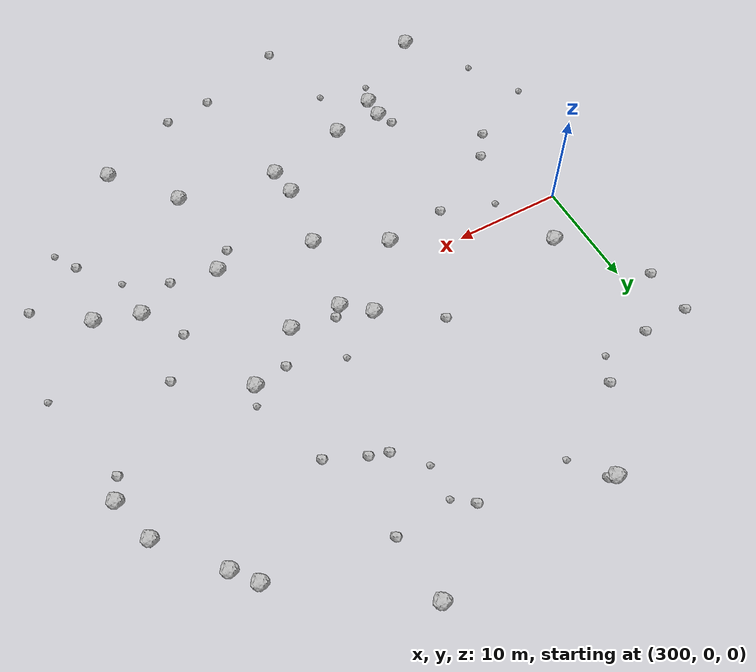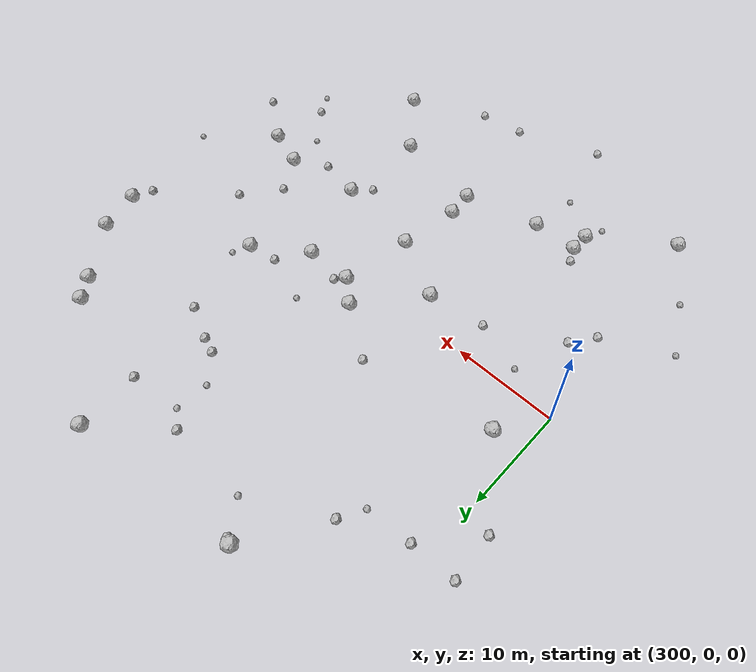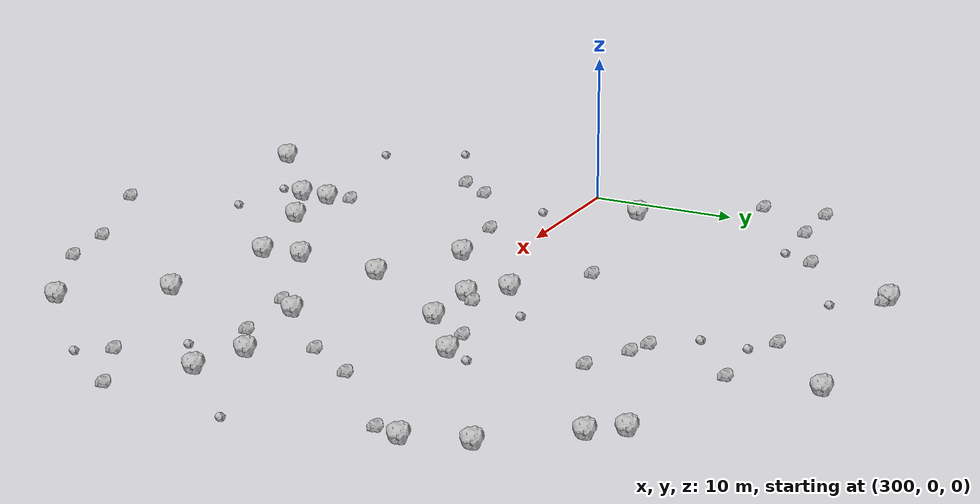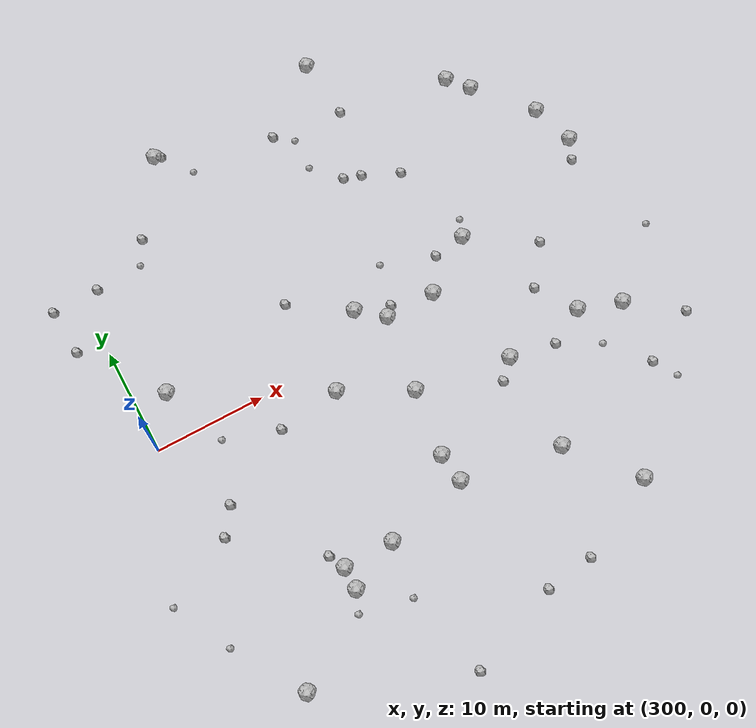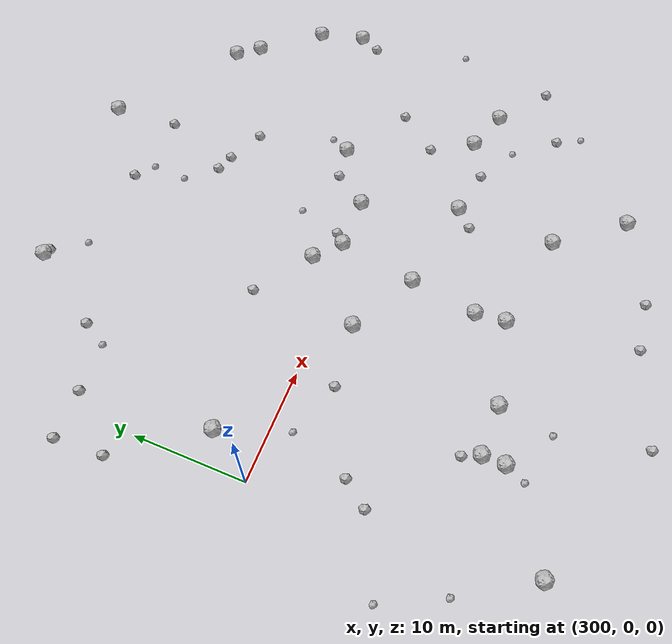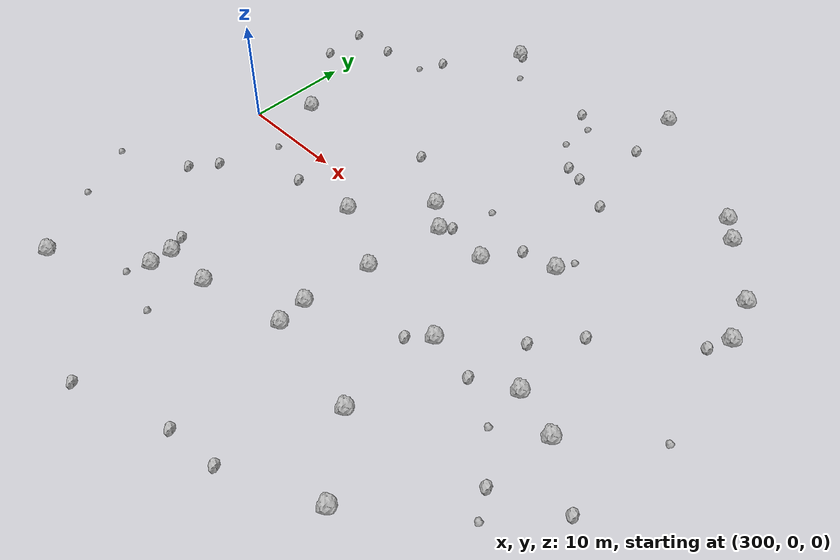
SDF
<sdf version="1.6">
 <world name="default">
  <include><uri>model://sun</uri></include>
  <model name="rock1_8_3">
   <include><uri>model://rock1</uri><pose>327.86338473538683 1.2996019143087452 0.5 0 0 0</pose></include>
  </model>
  <model name="rock1_8_4">
   <include><uri>model://rock1</uri><pose>313.7614206147493 -16.53851986024071 0.5 0 0 0</pose></include>
  </model>
  <model name="rock1_8_5">
   <include><uri>model://rock1</uri><pose>338.3586077307131 -6.24210390244739 0.5 0 0 0</pose></include>
  </model>
  <model name="rock1_8_6">
   <include><uri>model://rock1</uri><pose>346.81440949912894 8.727120104534876 0.5 0 0 0</pose></include>
  </model>
  <model name="rock1_8_7">
   <include><uri>model://rock1</uri><pose>315.9246219629441 -2.68444812201637 0.5 0 0 0</pose></include>
  </model>
  <model name="rock1_8_8">
   <include><uri>model://rock1</uri><pose>301.8760731844232 -23.877693937973252 0.5 0 0 0</pose></include>
  </model>
  <model name="rock1_8_9">
   <include><uri>model://rock1</uri><pose>339.9292981585214 19.88422234131491 0.5 0 0 0</pose></include>
  </model>
  <model name="rock1_8_10">
   <include><uri>model://rock1</uri><pose>342.2628519516746 -7.5683044145192255 0.5 0 0 0</pose></include>
  </model>
  <model name="rock1_8_11">
   <include><uri>model://rock1</uri><pose>335.1133981208722 -22.063502058854912 0.5 0 0 0</pose></include>
  </model>
  <model name="rock1_8_12">
   <include><uri>model://rock1</uri><pose>321.9853731376645 -5.918734283574839 0.5 0 0 0</pose></include>
  </model>
  <model name="rock1_8_13">
   <include><uri>model://rock1</uri><pose>309.2528317218501 -16.5360134112418 0.5 0 0 0</pose></include>
  </model>
  <model name="rock1_8_14">
   <include><uri>model://rock1</uri><pose>341.4874788692258 17.925904587949397 0.5 0 0 0</pose></include>
  </model>
  <model name="rock1_8_15">
   <include><uri>model://rock1</uri><pose>332.945924548327 4.822953734690557 0.5 0 0 0</pose></include>
  </model>
  <model name="rock1_8_16">
   <include><uri>model://rock1</uri><pose>320.8867504674974 3.199229775727467 0.5 0 0 0</pose></include>
  </model>
  <model name="rock1_8_17">
   <include><uri>model://rock1</uri><pose>323.17569361475296 1.2326619171754096 0.5 0 0 0</pose></include>
  </model>
  <model name="rock1_8_18">
   <include><uri>model://rock1</uri><pose>321.3485154676823 -14.780795071938917 0.5 0 0 0</pose></include>
  </model>
  <model name="rock1_8_19">
   <include><uri>model://rock1</uri><pose>328.9554675646249 27.575674896766543 0.5 0 0 0</pose></include>
  </model>
  <model name="rock1_8_20">
   <include><uri>model://rock1</uri><pose>321.06819198397756 -12.055752057247428 0.5 0 0 0</pose></include>
  </model>
  <model name="rock1_8_21">
   <include><uri>model://rock1</uri><pose>302.9325274533879 4.2890268670933835 0.5 0 0 0</pose></include>
  </model>
  <model name="rock1_8_22">
   <include><uri>model://rock1</uri><pose>311.9096937499419 25.6725150548819 0.5 0 0 0</pose></include>
  </model>
  <model name="rock1_8_23">
   <include><uri>model://rock1</uri><pose>330.49589070731264 -16.292127953047896 0.5 0 0 0</pose></include>
  </model>
  <model name="rock1_8_24">
   <include><uri>model://rock1</uri><pose>309.22769099417144 -18.560930114017374 0.5 0 0 0</pose></include>
  </model>
  <model name="rock1_8_25">
   <include><uri>model://rock1</uri><pose>330.72905641749537 -7.262547580608697 0.5 0 0 0</pose></include>
  </model>
  <model name="rock1_8_26">
   <include><uri>model://rock1</uri><pose>345.6873177871172 12.837204911103449 0.5 0 0 0</pose></include>
  </model>
  <model name="rock2_8_0">
   <include><uri>model://rock2</uri><pose>329.0867831162143 -8.854250193153792 0.3 0 0 0</pose></include>
  </model>
  <model name="rock2_8_1">
   <include><uri>model://rock2</uri><pose>308.53128369102666 -15.0610361207398 0.3 0 0 0</pose></include>
  </model>
  <model name="rock2_8_2">
   <include><uri>model://rock2</uri><pose>329.8800724042617 4.356421649253903 0.3 0 0 0</pose></include>
  </model>
  <model name="rock2_8_3">
   <include><uri>model://rock2</uri><pose>326.28485733278376 15.32426156607368 0.3 0 0 0</pose></include>
  </model>
  <model name="rock2_8_4">
   <include><uri>model://rock2</uri><pose>314.8167342941367 -29.098132641026503 0.3 0 0 0</pose></include>
  </model>
  <model name="rock2_8_5">
   <include><uri>model://rock2</uri><pose>336.05286706219476 -2.618162598142508 0.3 0 0 0</pose></include>
  </model>
  <model name="rock2_8_6">
   <include><uri>model://rock2</uri><pose>331.25236356162964 13.278633245282428 0.3 0 0 0</pose></include>
  </model>
  <model name="rock2_8_7">
   <include><uri>model://rock2</uri><pose>323.08373087140706 -26.17038509805185 0.3 0 0 0</pose></include>
  </model>
  <model name="rock2_8_8">
   <include><uri>model://rock2</uri><pose>303.29844964872495 -7.220535481368664 0.3 0 0 0</pose></include>
  </model>
  <model name="rock2_8_9">
   <include><uri>model://rock2</uri><pose>323.9625871833085 2.108725688203407 0.3 0 0 0</pose></include>
  </model>
  <model name="rock2_8_10">
   <include><uri>model://rock2</uri><pose>346.7623368765749 -11.024483072067152 0.3 0 0 0</pose></include>
  </model>
  <model name="rock2_8_11">
   <include><uri>model://rock2</uri><pose>297.58040342578505 11.499183465866246 0.3 0 0 0</pose></include>
  </model>
  <model name="rock2_8_12">
   <include><uri>model://rock2</uri><pose>334.9273197708029 -8.063708829293265 0.3 0 0 0</pose></include>
  </model>
  <model name="rock2_8_13">
   <include><uri>model://rock2</uri><pose>341.53215795933517 -13.581899380692985 0.3 0 0 0</pose></include>
  </model>
  <model name="rock2_8_14">
   <include><uri>model://rock2</uri><pose>345.8796820667478 6.791700641485207 0.3 0 0 0</pose></include>
  </model>
  <model name="rock2_8_15">
   <include><uri>model://rock2</uri><pose>301.62739725478247 -9.500818567326075 0.3 0 0 0</pose></include>
  </model>
  <model name="rock2_8_16">
   <include><uri>model://rock2</uri><pose>297.3091320806749 15.928963676162901 0.3 0 0 0</pose></include>
  </model>
  <model name="rock2_8_17">
   <include><uri>model://rock2</uri><pose>310.1221332706332 -3.433555721762474 0.3 0 0 0</pose></include>
  </model>
  <model name="rock2_8_18">
   <include><uri>model://rock2</uri><pose>327.9045789288056 14.791964487800747 0.3 0 0 0</pose></include>
  </model>
  <model name="rock2_8_19">
   <include><uri>model://rock2</uri><pose>307.2725525692273 18.6598697946146 0.3 0 0 0</pose></include>
  </model>
  <model name="rock2_8_20">
   <include><uri>model://rock2</uri><pose>338.85754673493153 1.0276755635984358 0.3 0 0 0</pose></include>
  </model>
  <model name="rock2_8_21">
   <include><uri>model://rock2</uri><pose>301.6497724751689 16.08790961369165 0.3 0 0 0</pose></include>
  </model>
  <model name="rock2_8_22">
   <include><uri>model://rock2</uri><pose>322.54869215376215 22.31434600271261 0.3 0 0 0</pose></include>
  </model>
  <model name="rock2_8_23">
   <include><uri>model://rock2</uri><pose>315.7373616419584 6.7198191838858605 0.3 0 0 0</pose></include>
  </model>
  <model name="rock2_8_24">
   <include><uri>model://rock2</uri><pose>312.4381789849467 25.484228878533678 0.3 0 0 0</pose></include>
  </model>
  <model name="rock2_8_25">
   <include><uri>model://rock2</uri><pose>329.35386787022867 21.644288702697672 0.3 0 0 0</pose></include>
  </model>
  <model name="rock2_8_26">
   <include><uri>model://rock2</uri><pose>327.5258927179965 -25.60739221123259 0.3 0 0 0</pose></include>
  </model>
  <model name="rock3_8_0">
   <include><uri>model://rock3</uri><pose>305.18294881092214 -1.816226704904441 0.2 0 0 0</pose></include>
  </model>
  <model name="rock3_8_1">
   <include><uri>model://rock3</uri><pose>348.3374308368326 -2.0873238670838212 0.2 0 0 0</pose></include>
  </model>
  <model name="rock3_8_2">
   <include><uri>model://rock3</uri><pose>314.40209954190186 22.595986391710234 0.2 0 0 0</pose></include>
  </model>
  <model name="rock3_8_3">
   <include><uri>model://rock3</uri><pose>338.6162616265712 -10.071024017316677 0.2 0 0 0</pose></include>
  </model>
  <model name="rock3_8_4">
   <include><uri>model://rock3</uri><pose>308.38896867599505 -20.450416490779904 0.2 0 0 0</pose></include>
  </model>
  <model name="rock3_8_5">
   <include><uri>model://rock3</uri><pose>295.3533831349876 -12.696970050846158 0.2 0 0 0</pose></include>
  </model>
  <model name="rock3_8_6">
   <include><uri>model://rock3</uri><pose>325.01709562526366 5.9984872986793505 0.2 0 0 0</pose></include>
  </model>
  <model name="rock3_8_7">
   <include><uri>model://rock3</uri><pose>297.9666827776306 -17.837896241698225 0.2 0 0 0</pose></include>
  </model>
  <model name="rock3_8_8">
   <include><uri>model://rock3</uri><pose>324.02092542229457 17.796210931426444 0.2 0 0 0</pose></include>
  </model>
  <model name="rock3_8_9">
   <include><uri>model://rock3</uri><pose>306.02673882762065 16.359145973454204 0.2 0 0 0</pose></include>
  </model>
  <model name="rock3_8_10">
   <include><uri>model://rock3</uri><pose>312.9744734842714 -21.45769345056236 0.2 0 0 0</pose></include>
  </model>
  <model name="rock3_8_11">
   <include><uri>model://rock3</uri><pose>342.73403916217376 -15.719022039214128 0.2 0 0 0</pose></include>
  </model>
  <model name="rock3_8_12">
   <include><uri>model://rock3</uri><pose>333.6281535225409 6.482057675543423 0.2 0 0 0</pose></include>
  </model>
  <model name="rock3_8_13">
   <include><uri>model://rock3</uri><pose>324.182275712128 20.982002961456104 0.2 0 0 0</pose></include>
  </model>
 </world>
</sdf>
